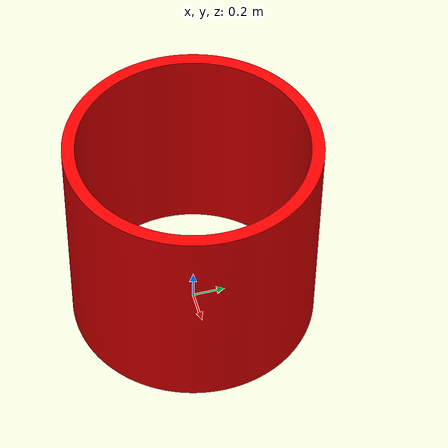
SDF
<?xml version="1.6"?>
<sdf version="1.6">
  <model name="bowl_model">
    <static>true</static>
    <pose>0 0 0 0 0 0</pose> <!-- Position at origin -->
    <link name="bowl_link">

      <!-- Collision geometry -->
      <collision name="collision">
        <geometry>
          <mesh>
            <uri>file:///home/nithish/ur10e_ws/src/Universal_Robots_ROS2_Description/meshes/ur10e/collision/bowl.stl</uri>
            <scale>0.0015 0.0015 0.0015</scale>
          </mesh>
        </geometry>
        <surface>
          <contact>
            <ode/>
          </contact>
        </surface>
      </collision>

      <!-- Visual geometry -->
      <visual name="visual">
        <geometry>
          <mesh>
            <uri>file:///home/nithish/ur10e_ws/src/Universal_Robots_ROS2_Description/meshes/ur10e/collision/bowl.stl</uri>
            <scale>0.0015 0.0015 0.0015</scale>
          </mesh>
        </geometry>
        <material>
          <ambient>1 0 0 1</ambient> <!-- Red -->
          <diffuse>1 0 0 1</diffuse> <!-- Red -->
          <specular>0.2 0.2 0.2 1</specular>
          <emissive>0 0 0 1</emissive>
        </material>
      </visual>

    </link>
  </model>
</sdf>
